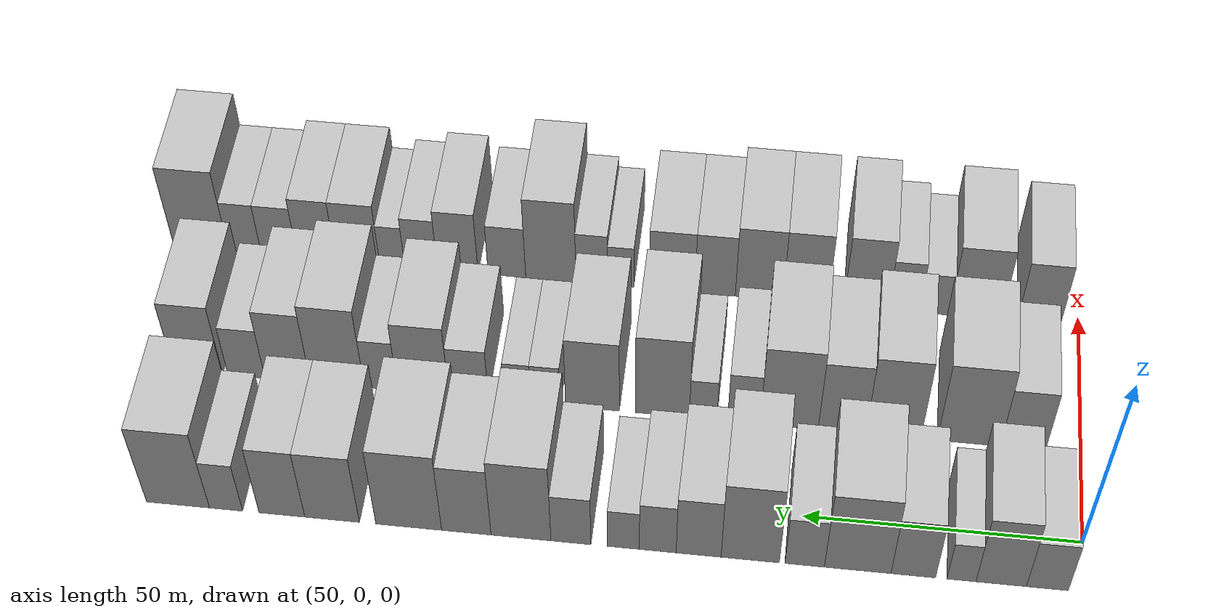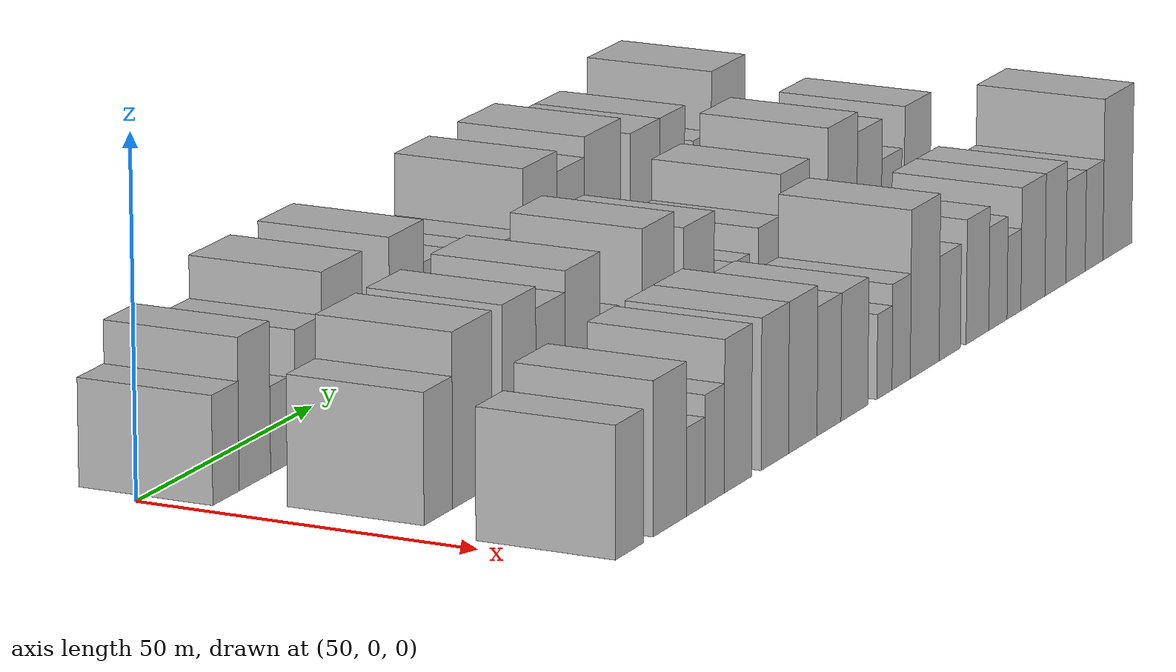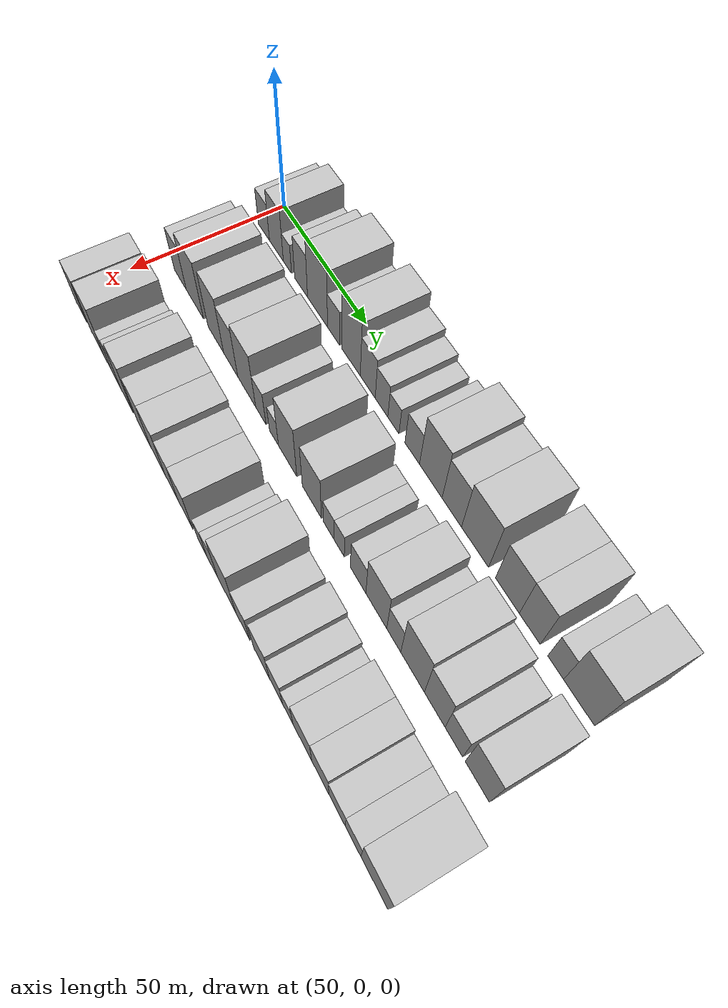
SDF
<sdf version="1.6">
 <world name="default">
  <model name="building_40">
   <static>1</static>
   <pose>50.0000 6.2769 0 0.000000 0.000000 0.000000</pose>
   <link name="link">
    <pose>0 0 7.50 0 0 0</pose>
    <collision name="collision"><geometry><box><size>20.0000 7.3298 15.0000</size></box></geometry></collision>
    <visual name="visual">
     <cast_shadows>0</cast_shadows>
     <geometry><box><size>20.0000 7.3298 15.0000</size></box></geometry>
     <material>
      <script>
       <uri>model://HANNAS_wall/materials/scripts</uri>
       <uri>model://HANNAS_wall/materials/textures</uri>
       <name>vrc/HANNAS_wall</name>
      </script>
     </material>
    </visual>
   </link>
  </model>
  <model name="building_41">
   <static>1</static>
   <pose>50.0000 14.3793 0 0.000000 0.000000 0.000000</pose>
   <link name="link">
    <pose>0 0 10.50 0 0 0</pose>
    <collision name="collision"><geometry><box><size>20.0000 8.8749 21.0000</size></box></geometry></collision>
    <visual name="visual">
     <cast_shadows>0</cast_shadows>
     <geometry><box><size>20.0000 8.8749 21.0000</size></box></geometry>
     <material>
      <script>
       <uri>model://HANNAS_wall/materials/scripts</uri>
       <uri>model://HANNAS_wall/materials/textures</uri>
       <name>vrc/HANNAS_wall</name>
      </script>
     </material>
    </visual>
   </link>
  </model>
  <model name="building_42">
   <static>1</static>
   <pose>50.0000 21.3698 0 0.000000 0.000000 0.000000</pose>
   <link name="link">
    <pose>0 0 6.00 0 0 0</pose>
    <collision name="collision"><geometry><box><size>20.0000 5.1060 12.0000</size></box></geometry></collision>
    <visual name="visual">
     <cast_shadows>0</cast_shadows>
     <geometry><box><size>20.0000 5.1060 12.0000</size></box></geometry>
     <material>
      <script>
       <uri>model://HANNAS_wall/materials/scripts</uri>
       <uri>model://HANNAS_wall/materials/textures</uri>
       <name>vrc/HANNAS_wall</name>
      </script>
     </material>
    </visual>
   </link>
  </model>
  <model name="building_43">
   <static>1</static>
   <pose>50.0000 29.8558 0 0.000000 0.000000 0.000000</pose>
   <link name="link">
    <pose>0 0 9.00 0 0 0</pose>
    <collision name="collision"><geometry><box><size>20.0000 7.8661 18.0000</size></box></geometry></collision>
    <visual name="visual">
     <cast_shadows>0</cast_shadows>
     <geometry><box><size>20.0000 7.8661 18.0000</size></box></geometry>
     <material>
      <script>
       <uri>model://HANNAS_wall/materials/scripts</uri>
       <uri>model://HANNAS_wall/materials/textures</uri>
       <name>vrc/HANNAS_wall</name>
      </script>
     </material>
    </visual>
   </link>
  </model>
  <model name="building_44">
   <static>1</static>
   <pose>50.0000 39.6937 0 0.000000 0.000000 0.000000</pose>
   <link name="link">
    <pose>0 0 12.00 0 0 0</pose>
    <collision name="collision"><geometry><box><size>20.0000 11.8096 24.0000</size></box></geometry></collision>
    <visual name="visual">
     <cast_shadows>0</cast_shadows>
     <geometry><box><size>20.0000 11.8096 24.0000</size></box></geometry>
     <material>
      <script>
       <uri>model://HANNAS_wall/materials/scripts</uri>
       <uri>model://HANNAS_wall/materials/textures</uri>
       <name>vrc/HANNAS_wall</name>
      </script>
     </material>
    </visual>
   </link>
  </model>
  <model name="building_45">
   <static>1</static>
   <pose>50.0000 49.0959 0 0.000000 0.000000 0.000000</pose>
   <link name="link">
    <pose>0 0 7.50 0 0 0</pose>
    <collision name="collision"><geometry><box><size>20.0000 6.9949 15.0000</size></box></geometry></collision>
    <visual name="visual">
     <cast_shadows>0</cast_shadows>
     <geometry><box><size>20.0000 6.9949 15.0000</size></box></geometry>
     <material>
      <script>
       <uri>model://HANNAS_wall/materials/scripts</uri>
       <uri>model://HANNAS_wall/materials/textures</uri>
       <name>vrc/HANNAS_wall</name>
      </script>
     </material>
    </visual>
   </link>
  </model>
  <model name="building_46">
   <static>1</static>
   <pose>50.0000 58.7831 0 0.000000 0.000000 0.000000</pose>
   <link name="link">
    <pose>0 0 12.00 0 0 0</pose>
    <collision name="collision"><geometry><box><size>20.0000 10.3796 24.0000</size></box></geometry></collision>
    <visual name="visual">
     <cast_shadows>0</cast_shadows>
     <geometry><box><size>20.0000 10.3796 24.0000</size></box></geometry>
     <material>
      <script>
       <uri>model://HANNAS_wall/materials/scripts</uri>
       <uri>model://HANNAS_wall/materials/textures</uri>
       <name>vrc/HANNAS_wall</name>
      </script>
     </material>
    </visual>
   </link>
  </model>
  <model name="building_47">
   <static>1</static>
   <pose>50.0000 67.9935 0 0.000000 0.000000 0.000000</pose>
   <link name="link">
    <pose>0 0 9.00 0 0 0</pose>
    <collision name="collision"><geometry><box><size>20.0000 8.0411 18.0000</size></box></geometry></collision>
    <visual name="visual">
     <cast_shadows>0</cast_shadows>
     <geometry><box><size>20.0000 8.0411 18.0000</size></box></geometry>
     <material>
      <script>
       <uri>model://HANNAS_wall/materials/scripts</uri>
       <uri>model://HANNAS_wall/materials/textures</uri>
       <name>vrc/HANNAS_wall</name>
      </script>
     </material>
    </visual>
   </link>
  </model>
  <model name="building_48">
   <static>1</static>
   <pose>50.0000 75.3206 0 0.000000 0.000000 0.000000</pose>
   <link name="link">
    <pose>0 0 7.50 0 0 0</pose>
    <collision name="collision"><geometry><box><size>20.0000 6.6130 15.0000</size></box></geometry></collision>
    <visual name="visual">
     <cast_shadows>0</cast_shadows>
     <geometry><box><size>20.0000 6.6130 15.0000</size></box></geometry>
     <material>
      <script>
       <uri>model://HANNAS_wall/materials/scripts</uri>
       <uri>model://HANNAS_wall/materials/textures</uri>
       <name>vrc/HANNAS_wall</name>
      </script>
     </material>
    </visual>
   </link>
  </model>
  <model name="building_49">
   <static>1</static>
   <pose>50.0000 81.4711 0 0.000000 0.000000 0.000000</pose>
   <link name="link">
    <pose>0 0 6.00 0 0 0</pose>
    <collision name="collision"><geometry><box><size>20.0000 5.6880 12.0000</size></box></geometry></collision>
    <visual name="visual">
     <cast_shadows>0</cast_shadows>
     <geometry><box><size>20.0000 5.6880 12.0000</size></box></geometry>
     <material>
      <script>
       <uri>model://HANNAS_wall/materials/scripts</uri>
       <uri>model://HANNAS_wall/materials/textures</uri>
       <name>vrc/HANNAS_wall</name>
      </script>
     </material>
    </visual>
   </link>
  </model>
  <model name="building_50">
   <static>1</static>
   <pose>50.0000 90.9111 0 0.000000 0.000000 0.000000</pose>
   <link name="link">
    <pose>0 0 7.50 0 0 0</pose>
    <collision name="collision"><geometry><box><size>20.0000 7.1922 15.0000</size></box></geometry></collision>
    <visual name="visual">
     <cast_shadows>0</cast_shadows>
     <geometry><box><size>20.0000 7.1922 15.0000</size></box></geometry>
     <material>
      <script>
       <uri>model://HANNAS_wall/materials/scripts</uri>
       <uri>model://HANNAS_wall/materials/textures</uri>
       <name>vrc/HANNAS_wall</name>
      </script>
     </material>
    </visual>
   </link>
  </model>
  <model name="building_51">
   <static>1</static>
   <pose>50.0000 99.9190 0 0.000000 0.000000 0.000000</pose>
   <link name="link">
    <pose>0 0 12.00 0 0 0</pose>
    <collision name="collision"><geometry><box><size>20.0000 10.8236 24.0000</size></box></geometry></collision>
    <visual name="visual">
     <cast_shadows>0</cast_shadows>
     <geometry><box><size>20.0000 10.8236 24.0000</size></box></geometry>
     <material>
      <script>
       <uri>model://HANNAS_wall/materials/scripts</uri>
       <uri>model://HANNAS_wall/materials/textures</uri>
       <name>vrc/HANNAS_wall</name>
      </script>
     </material>
    </visual>
   </link>
  </model>
  <model name="building_52">
   <static>1</static>
   <pose>50.0000 109.8083 0 0.000000 0.000000 0.000000</pose>
   <link name="link">
    <pose>0 0 10.50 0 0 0</pose>
    <collision name="collision"><geometry><box><size>20.0000 8.9550 21.0000</size></box></geometry></collision>
    <visual name="visual">
     <cast_shadows>0</cast_shadows>
     <geometry><box><size>20.0000 8.9550 21.0000</size></box></geometry>
     <material>
      <script>
       <uri>model://HANNAS_wall/materials/scripts</uri>
       <uri>model://HANNAS_wall/materials/textures</uri>
       <name>vrc/HANNAS_wall</name>
      </script>
     </material>
    </visual>
   </link>
  </model>
  <model name="building_53">
   <static>1</static>
   <pose>50.0000 120.2700 0 0.000000 0.000000 0.000000</pose>
   <link name="link">
    <pose>0 0 12.00 0 0 0</pose>
    <collision name="collision"><geometry><box><size>20.0000 11.9684 24.0000</size></box></geometry></collision>
    <visual name="visual">
     <cast_shadows>0</cast_shadows>
     <geometry><box><size>20.0000 11.9684 24.0000</size></box></geometry>
     <material>
      <script>
       <uri>model://HANNAS_wall/materials/scripts</uri>
       <uri>model://HANNAS_wall/materials/textures</uri>
       <name>vrc/HANNAS_wall</name>
      </script>
     </material>
    </visual>
   </link>
  </model>
  <model name="building_54">
   <static>1</static>
   <pose>50.0000 134.2469 0 0.000000 0.000000 0.000000</pose>
   <link name="link">
    <pose>0 0 10.50 0 0 0</pose>
    <collision name="collision"><geometry><box><size>20.0000 9.9855 21.0000</size></box></geometry></collision>
    <visual name="visual">
     <cast_shadows>0</cast_shadows>
     <geometry><box><size>20.0000 9.9855 21.0000</size></box></geometry>
     <material>
      <script>
       <uri>model://HANNAS_wall/materials/scripts</uri>
       <uri>model://HANNAS_wall/materials/textures</uri>
       <name>vrc/HANNAS_wall</name>
      </script>
     </material>
    </visual>
   </link>
  </model>
  <model name="building_55">
   <static>1</static>
   <pose>50.0000 143.4417 0 0.000000 0.000000 0.000000</pose>
   <link name="link">
    <pose>0 0 10.50 0 0 0</pose>
    <collision name="collision"><geometry><box><size>20.0000 8.4040 21.0000</size></box></geometry></collision>
    <visual name="visual">
     <cast_shadows>0</cast_shadows>
     <geometry><box><size>20.0000 8.4040 21.0000</size></box></geometry>
     <material>
      <script>
       <uri>model://HANNAS_wall/materials/scripts</uri>
       <uri>model://HANNAS_wall/materials/textures</uri>
       <name>vrc/HANNAS_wall</name>
      </script>
     </material>
    </visual>
   </link>
  </model>
  <model name="building_56">
   <static>1</static>
   <pose>50.0000 153.7033 0 0.000000 0.000000 0.000000</pose>
   <link name="link">
    <pose>0 0 7.50 0 0 0</pose>
    <collision name="collision"><geometry><box><size>20.0000 6.1192 15.0000</size></box></geometry></collision>
    <visual name="visual">
     <cast_shadows>0</cast_shadows>
     <geometry><box><size>20.0000 6.1192 15.0000</size></box></geometry>
     <material>
      <script>
       <uri>model://HANNAS_wall/materials/scripts</uri>
       <uri>model://HANNAS_wall/materials/textures</uri>
       <name>vrc/HANNAS_wall</name>
      </script>
     </material>
    </visual>
   </link>
  </model>
  <model name="building_57">
   <static>1</static>
   <pose>50.0000 162.5626 0 0.000000 0.000000 0.000000</pose>
   <link name="link">
    <pose>0 0 12.00 0 0 0</pose>
    <collision name="collision"><geometry><box><size>20.0000 11.5995 24.0000</size></box></geometry></collision>
    <visual name="visual">
     <cast_shadows>0</cast_shadows>
     <geometry><box><size>20.0000 11.5995 24.0000</size></box></geometry>
     <material>
      <script>
       <uri>model://HANNAS_wall/materials/scripts</uri>
       <uri>model://HANNAS_wall/materials/textures</uri>
       <name>vrc/HANNAS_wall</name>
      </script>
     </material>
    </visual>
   </link>
  </model>
  <model name="building_114">
   <static>1</static>
   <pose>79.0000 10.5758 0 0.000000 0.000000 0.000000</pose>
   <link name="link">
    <pose>0 0 9.00 0 0 0</pose>
    <collision name="collision"><geometry><box><size>20.0000 8.2987 18.0000</size></box></geometry></collision>
    <visual name="visual">
     <cast_shadows>0</cast_shadows>
     <geometry><box><size>20.0000 8.2987 18.0000</size></box></geometry>
     <material>
      <script>
       <uri>model://HANNAS_wall/materials/scripts</uri>
       <uri>model://HANNAS_wall/materials/textures</uri>
       <name>vrc/HANNAS_wall</name>
      </script>
     </material>
    </visual>
   </link>
  </model>
  <model name="building_115">
   <static>1</static>
   <pose>79.0000 20.5385 0 0.000000 0.000000 0.000000</pose>
   <link name="link">
    <pose>0 0 12.00 0 0 0</pose>
    <collision name="collision"><geometry><box><size>20.0000 11.6267 24.0000</size></box></geometry></collision>
    <visual name="visual">
     <cast_shadows>0</cast_shadows>
     <geometry><box><size>20.0000 11.6267 24.0000</size></box></geometry>
     <material>
      <script>
       <uri>model://HANNAS_wall/materials/scripts</uri>
       <uri>model://HANNAS_wall/materials/textures</uri>
       <name>vrc/HANNAS_wall</name>
      </script>
     </material>
    </visual>
   </link>
  </model>
  <model name="building_116">
   <static>1</static>
   <pose>79.0000 34.4201 0 0.000000 0.000000 0.000000</pose>
   <link name="link">
    <pose>0 0 12.00 0 0 0</pose>
    <collision name="collision"><geometry><box><size>20.0000 10.1365 24.0000</size></box></geometry></collision>
    <visual name="visual">
     <cast_shadows>0</cast_shadows>
     <geometry><box><size>20.0000 10.1365 24.0000</size></box></geometry>
     <material>
      <script>
       <uri>model://HANNAS_wall/materials/scripts</uri>
       <uri>model://HANNAS_wall/materials/textures</uri>
       <name>vrc/HANNAS_wall</name>
      </script>
     </material>
    </visual>
   </link>
  </model>
  <model name="building_117">
   <static>1</static>
   <pose>79.0000 43.9168 0 0.000000 0.000000 0.000000</pose>
   <link name="link">
    <pose>0 0 10.50 0 0 0</pose>
    <collision name="collision"><geometry><box><size>20.0000 8.8569 21.0000</size></box></geometry></collision>
    <visual name="visual">
     <cast_shadows>0</cast_shadows>
     <geometry><box><size>20.0000 8.8569 21.0000</size></box></geometry>
     <material>
      <script>
       <uri>model://HANNAS_wall/materials/scripts</uri>
       <uri>model://HANNAS_wall/materials/textures</uri>
       <name>vrc/HANNAS_wall</name>
      </script>
     </material>
    </visual>
   </link>
  </model>
  <model name="building_118">
   <static>1</static>
   <pose>79.0000 53.7370 0 0.000000 0.000000 0.000000</pose>
   <link name="link">
    <pose>0 0 12.00 0 0 0</pose>
    <collision name="collision"><geometry><box><size>20.0000 10.7835 24.0000</size></box></geometry></collision>
    <visual name="visual">
     <cast_shadows>0</cast_shadows>
     <geometry><box><size>20.0000 10.7835 24.0000</size></box></geometry>
     <material>
      <script>
       <uri>model://HANNAS_wall/materials/scripts</uri>
       <uri>model://HANNAS_wall/materials/textures</uri>
       <name>vrc/HANNAS_wall</name>
      </script>
     </material>
    </visual>
   </link>
  </model>
  <model name="building_119">
   <static>1</static>
   <pose>79.0000 62.1556 0 0.000000 0.000000 0.000000</pose>
   <link name="link">
    <pose>0 0 7.50 0 0 0</pose>
    <collision name="collision"><geometry><box><size>20.0000 6.0535 15.0000</size></box></geometry></collision>
    <visual name="visual">
     <cast_shadows>0</cast_shadows>
     <geometry><box><size>20.0000 6.0535 15.0000</size></box></geometry>
     <material>
      <script>
       <uri>model://HANNAS_wall/materials/scripts</uri>
       <uri>model://HANNAS_wall/materials/textures</uri>
       <name>vrc/HANNAS_wall</name>
      </script>
     </material>
    </visual>
   </link>
  </model>
  <model name="building_120">
   <static>1</static>
   <pose>79.0000 69.7512 0 0.000000 0.000000 0.000000</pose>
   <link name="link">
    <pose>0 0 6.00 0 0 0</pose>
    <collision name="collision"><geometry><box><size>20.0000 5.1376 12.0000</size></box></geometry></collision>
    <visual name="visual">
     <cast_shadows>0</cast_shadows>
     <geometry><box><size>20.0000 5.1376 12.0000</size></box></geometry>
     <material>
      <script>
       <uri>model://HANNAS_wall/materials/scripts</uri>
       <uri>model://HANNAS_wall/materials/textures</uri>
       <name>vrc/HANNAS_wall</name>
      </script>
     </material>
    </visual>
   </link>
  </model>
  <model name="building_121">
   <static>1</static>
   <pose>79.0000 77.3789 0 0.000000 0.000000 0.000000</pose>
   <link name="link">
    <pose>0 0 12.00 0 0 0</pose>
    <collision name="collision"><geometry><box><size>20.0000 10.1180 24.0000</size></box></geometry></collision>
    <visual name="visual">
     <cast_shadows>0</cast_shadows>
     <geometry><box><size>20.0000 10.1180 24.0000</size></box></geometry>
     <material>
      <script>
       <uri>model://HANNAS_wall/materials/scripts</uri>
       <uri>model://HANNAS_wall/materials/textures</uri>
       <name>vrc/HANNAS_wall</name>
      </script>
     </material>
    </visual>
   </link>
  </model>
  <model name="building_122">
   <static>1</static>
   <pose>79.0000 90.4845 0 0.000000 0.000000 0.000000</pose>
   <link name="link">
    <pose>0 0 10.50 0 0 0</pose>
    <collision name="collision"><geometry><box><size>20.0000 10.0931 21.0000</size></box></geometry></collision>
    <visual name="visual">
     <cast_shadows>0</cast_shadows>
     <geometry><box><size>20.0000 10.0931 21.0000</size></box></geometry>
     <material>
      <script>
       <uri>model://HANNAS_wall/materials/scripts</uri>
       <uri>model://HANNAS_wall/materials/textures</uri>
       <name>vrc/HANNAS_wall</name>
      </script>
     </material>
    </visual>
   </link>
  </model>
  <model name="building_123">
   <static>1</static>
   <pose>79.0000 99.3247 0 0.000000 0.000000 0.000000</pose>
   <link name="link">
    <pose>0 0 6.00 0 0 0</pose>
    <collision name="collision"><geometry><box><size>20.0000 5.5872 12.0000</size></box></geometry></collision>
    <visual name="visual">
     <cast_shadows>0</cast_shadows>
     <geometry><box><size>20.0000 5.5872 12.0000</size></box></geometry>
     <material>
      <script>
       <uri>model://HANNAS_wall/materials/scripts</uri>
       <uri>model://HANNAS_wall/materials/textures</uri>
       <name>vrc/HANNAS_wall</name>
      </script>
     </material>
    </visual>
   </link>
  </model>
  <model name="building_124">
   <static>1</static>
   <pose>79.0000 104.6119 0 0.000000 0.000000 0.000000</pose>
   <link name="link">
    <pose>0 0 6.00 0 0 0</pose>
    <collision name="collision"><geometry><box><size>20.0000 4.9874 12.0000</size></box></geometry></collision>
    <visual name="visual">
     <cast_shadows>0</cast_shadows>
     <geometry><box><size>20.0000 4.9874 12.0000</size></box></geometry>
     <material>
      <script>
       <uri>model://HANNAS_wall/materials/scripts</uri>
       <uri>model://HANNAS_wall/materials/textures</uri>
       <name>vrc/HANNAS_wall</name>
      </script>
     </material>
    </visual>
   </link>
  </model>
  <model name="building_125">
   <static>1</static>
   <pose>79.0000 113.8420 0 0.000000 0.000000 0.000000</pose>
   <link name="link">
    <pose>0 0 7.50 0 0 0</pose>
    <collision name="collision"><geometry><box><size>20.0000 7.4728 15.0000</size></box></geometry></collision>
    <visual name="visual">
     <cast_shadows>0</cast_shadows>
     <geometry><box><size>20.0000 7.4728 15.0000</size></box></geometry>
     <material>
      <script>
       <uri>model://HANNAS_wall/materials/scripts</uri>
       <uri>model://HANNAS_wall/materials/textures</uri>
       <name>vrc/HANNAS_wall</name>
      </script>
     </material>
    </visual>
   </link>
  </model>
  <model name="building_126">
   <static>1</static>
   <pose>79.0000 122.4557 0 0.000000 0.000000 0.000000</pose>
   <link name="link">
    <pose>0 0 10.50 0 0 0</pose>
    <collision name="collision"><geometry><box><size>20.0000 9.7545 21.0000</size></box></geometry></collision>
    <visual name="visual">
     <cast_shadows>0</cast_shadows>
     <geometry><box><size>20.0000 9.7545 21.0000</size></box></geometry>
     <material>
      <script>
       <uri>model://HANNAS_wall/materials/scripts</uri>
       <uri>model://HANNAS_wall/materials/textures</uri>
       <name>vrc/HANNAS_wall</name>
      </script>
     </material>
    </visual>
   </link>
  </model>
  <model name="building_127">
   <static>1</static>
   <pose>79.0000 130.4893 0 0.000000 0.000000 0.000000</pose>
   <link name="link">
    <pose>0 0 7.50 0 0 0</pose>
    <collision name="collision"><geometry><box><size>20.0000 6.3129 15.0000</size></box></geometry></collision>
    <visual name="visual">
     <cast_shadows>0</cast_shadows>
     <geometry><box><size>20.0000 6.3129 15.0000</size></box></geometry>
     <material>
      <script>
       <uri>model://HANNAS_wall/materials/scripts</uri>
       <uri>model://HANNAS_wall/materials/textures</uri>
       <name>vrc/HANNAS_wall</name>
      </script>
     </material>
    </visual>
   </link>
  </model>
  <model name="building_128">
   <static>1</static>
   <pose>79.0000 138.8078 0 0.000000 0.000000 0.000000</pose>
   <link name="link">
    <pose>0 0 12.00 0 0 0</pose>
    <collision name="collision"><geometry><box><size>20.0000 10.3240 24.0000</size></box></geometry></collision>
    <visual name="visual">
     <cast_shadows>0</cast_shadows>
     <geometry><box><size>20.0000 10.3240 24.0000</size></box></geometry>
     <material>
      <script>
       <uri>model://HANNAS_wall/materials/scripts</uri>
       <uri>model://HANNAS_wall/materials/textures</uri>
       <name>vrc/HANNAS_wall</name>
      </script>
     </material>
    </visual>
   </link>
  </model>
  <model name="building_129">
   <static>1</static>
   <pose>79.0000 148.3099 0 0.000000 0.000000 0.000000</pose>
   <link name="link">
    <pose>0 0 10.50 0 0 0</pose>
    <collision name="collision"><geometry><box><size>20.0000 8.6802 21.0000</size></box></geometry></collision>
    <visual name="visual">
     <cast_shadows>0</cast_shadows>
     <geometry><box><size>20.0000 8.6802 21.0000</size></box></geometry>
     <material>
      <script>
       <uri>model://HANNAS_wall/materials/scripts</uri>
       <uri>model://HANNAS_wall/materials/textures</uri>
       <name>vrc/HANNAS_wall</name>
      </script>
     </material>
    </visual>
   </link>
  </model>
  <model name="building_130">
   <static>1</static>
   <pose>79.0000 156.2112 0 0.000000 0.000000 0.000000</pose>
   <link name="link">
    <pose>0 0 7.50 0 0 0</pose>
    <collision name="collision"><geometry><box><size>20.0000 7.1224 15.0000</size></box></geometry></collision>
    <visual name="visual">
     <cast_shadows>0</cast_shadows>
     <geometry><box><size>20.0000 7.1224 15.0000</size></box></geometry>
     <material>
      <script>
       <uri>model://HANNAS_wall/materials/scripts</uri>
       <uri>model://HANNAS_wall/materials/textures</uri>
       <name>vrc/HANNAS_wall</name>
      </script>
     </material>
    </visual>
   </link>
  </model>
  <model name="building_131">
   <static>1</static>
   <pose>79.0000 165.4936 0 0.000000 0.000000 0.000000</pose>
   <link name="link">
    <pose>0 0 10.50 0 0 0</pose>
    <collision name="collision"><geometry><box><size>20.0000 9.4423 21.0000</size></box></geometry></collision>
    <visual name="visual">
     <cast_shadows>0</cast_shadows>
     <geometry><box><size>20.0000 9.4423 21.0000</size></box></geometry>
     <material>
      <script>
       <uri>model://HANNAS_wall/materials/scripts</uri>
       <uri>model://HANNAS_wall/materials/textures</uri>
       <name>vrc/HANNAS_wall</name>
      </script>
     </material>
    </visual>
   </link>
  </model>
  <model name="building_186">
   <static>1</static>
   <pose>108.0000 7.5451 0 0.000000 0.000000 0.000000</pose>
   <link name="link">
    <pose>0 0 9.00 0 0 0</pose>
    <collision name="collision"><geometry><box><size>20.0000 8.2315 18.0000</size></box></geometry></collision>
    <visual name="visual">
     <cast_shadows>0</cast_shadows>
     <geometry><box><size>20.0000 8.2315 18.0000</size></box></geometry>
     <material>
      <script>
       <uri>model://HANNAS_wall/materials/scripts</uri>
       <uri>model://HANNAS_wall/materials/textures</uri>
       <name>vrc/HANNAS_wall</name>
      </script>
     </material>
    </visual>
   </link>
  </model>
  <model name="building_187">
   <static>1</static>
   <pose>108.0000 19.6900 0 0.000000 0.000000 0.000000</pose>
   <link name="link">
    <pose>0 0 10.50 0 0 0</pose>
    <collision name="collision"><geometry><box><size>20.0000 10.0584 21.0000</size></box></geometry></collision>
    <visual name="visual">
     <cast_shadows>0</cast_shadows>
     <geometry><box><size>20.0000 10.0584 21.0000</size></box></geometry>
     <material>
      <script>
       <uri>model://HANNAS_wall/materials/scripts</uri>
       <uri>model://HANNAS_wall/materials/textures</uri>
       <name>vrc/HANNAS_wall</name>
      </script>
     </material>
    </visual>
   </link>
  </model>
  <model name="building_188">
   <static>1</static>
   <pose>108.0000 27.5665 0 0.000000 0.000000 0.000000</pose>
   <link name="link">
    <pose>0 0 6.00 0 0 0</pose>
    <collision name="collision"><geometry><box><size>20.0000 5.6945 12.0000</size></box></geometry></collision>
    <visual name="visual">
     <cast_shadows>0</cast_shadows>
     <geometry><box><size>20.0000 5.6945 12.0000</size></box></geometry>
     <material>
      <script>
       <uri>model://HANNAS_wall/materials/scripts</uri>
       <uri>model://HANNAS_wall/materials/textures</uri>
       <name>vrc/HANNAS_wall</name>
      </script>
     </material>
    </visual>
   </link>
  </model>
  <model name="building_189">
   <static>1</static>
   <pose>108.0000 33.4491 0 0.000000 0.000000 0.000000</pose>
   <link name="link">
    <pose>0 0 7.50 0 0 0</pose>
    <collision name="collision"><geometry><box><size>20.0000 6.0708 15.0000</size></box></geometry></collision>
    <visual name="visual">
     <cast_shadows>0</cast_shadows>
     <geometry><box><size>20.0000 6.0708 15.0000</size></box></geometry>
     <material>
      <script>
       <uri>model://HANNAS_wall/materials/scripts</uri>
       <uri>model://HANNAS_wall/materials/textures</uri>
       <name>vrc/HANNAS_wall</name>
      </script>
     </material>
    </visual>
   </link>
  </model>
  <model name="building_190">
   <static>1</static>
   <pose>108.0000 40.7851 0 0.000000 0.000000 0.000000</pose>
   <link name="link">
    <pose>0 0 10.50 0 0 0</pose>
    <collision name="collision"><geometry><box><size>20.0000 8.6012 21.0000</size></box></geometry></collision>
    <visual name="visual">
     <cast_shadows>0</cast_shadows>
     <geometry><box><size>20.0000 8.6012 21.0000</size></box></geometry>
     <material>
      <script>
       <uri>model://HANNAS_wall/materials/scripts</uri>
       <uri>model://HANNAS_wall/materials/textures</uri>
       <name>vrc/HANNAS_wall</name>
      </script>
     </material>
    </visual>
   </link>
  </model>
  <model name="building_191">
   <static>1</static>
   <pose>108.0000 52.4677 0 0.000000 0.000000 0.000000</pose>
   <link name="link">
    <pose>0 0 10.50 0 0 0</pose>
    <collision name="collision"><geometry><box><size>20.0000 8.7640 21.0000</size></box></geometry></collision>
    <visual name="visual">
     <cast_shadows>0</cast_shadows>
     <geometry><box><size>20.0000 8.7640 21.0000</size></box></geometry>
     <material>
      <script>
       <uri>model://HANNAS_wall/materials/scripts</uri>
       <uri>model://HANNAS_wall/materials/textures</uri>
       <name>vrc/HANNAS_wall</name>
      </script>
     </material>
    </visual>
   </link>
  </model>
  <model name="building_192">
   <static>1</static>
   <pose>108.0000 61.4539 0 0.000000 0.000000 0.000000</pose>
   <link name="link">
    <pose>0 0 10.50 0 0 0</pose>
    <collision name="collision"><geometry><box><size>20.0000 9.2084 21.0000</size></box></geometry></collision>
    <visual name="visual">
     <cast_shadows>0</cast_shadows>
     <geometry><box><size>20.0000 9.2084 21.0000</size></box></geometry>
     <material>
      <script>
       <uri>model://HANNAS_wall/materials/scripts</uri>
       <uri>model://HANNAS_wall/materials/textures</uri>
       <name>vrc/HANNAS_wall</name>
      </script>
     </material>
    </visual>
   </link>
  </model>
  <model name="building_193">
   <static>1</static>
   <pose>108.0000 69.9841 0 0.000000 0.000000 0.000000</pose>
   <link name="link">
    <pose>0 0 9.00 0 0 0</pose>
    <collision name="collision"><geometry><box><size>20.0000 7.8519 18.0000</size></box></geometry></collision>
    <visual name="visual">
     <cast_shadows>0</cast_shadows>
     <geometry><box><size>20.0000 7.8519 18.0000</size></box></geometry>
     <material>
      <script>
       <uri>model://HANNAS_wall/materials/scripts</uri>
       <uri>model://HANNAS_wall/materials/textures</uri>
       <name>vrc/HANNAS_wall</name>
      </script>
     </material>
    </visual>
   </link>
  </model>
  <model name="building_194">
   <static>1</static>
   <pose>108.0000 78.3804 0 0.000000 0.000000 0.000000</pose>
   <link name="link">
    <pose>0 0 9.00 0 0 0</pose>
    <collision name="collision"><geometry><box><size>20.0000 8.9408 18.0000</size></box></geometry></collision>
    <visual name="visual">
     <cast_shadows>0</cast_shadows>
     <geometry><box><size>20.0000 8.9408 18.0000</size></box></geometry>
     <material>
      <script>
       <uri>model://HANNAS_wall/materials/scripts</uri>
       <uri>model://HANNAS_wall/materials/textures</uri>
       <name>vrc/HANNAS_wall</name>
      </script>
     </material>
    </visual>
   </link>
  </model>
  <model name="building_195">
   <static>1</static>
   <pose>108.0000 88.3938 0 0.000000 0.000000 0.000000</pose>
   <link name="link">
    <pose>0 0 6.00 0 0 0</pose>
    <collision name="collision"><geometry><box><size>20.0000 5.0858 12.0000</size></box></geometry></collision>
    <visual name="visual">
     <cast_shadows>0</cast_shadows>
     <geometry><box><size>20.0000 5.0858 12.0000</size></box></geometry>
     <material>
      <script>
       <uri>model://HANNAS_wall/materials/scripts</uri>
       <uri>model://HANNAS_wall/materials/textures</uri>
       <name>vrc/HANNAS_wall</name>
      </script>
     </material>
    </visual>
   </link>
  </model>
  <model name="building_196">
   <static>1</static>
   <pose>108.0000 94.0449 0 0.000000 0.000000 0.000000</pose>
   <link name="link">
    <pose>0 0 7.50 0 0 0</pose>
    <collision name="collision"><geometry><box><size>20.0000 6.2165 15.0000</size></box></geometry></collision>
    <visual name="visual">
     <cast_shadows>0</cast_shadows>
     <geometry><box><size>20.0000 6.2165 15.0000</size></box></geometry>
     <material>
      <script>
       <uri>model://HANNAS_wall/materials/scripts</uri>
       <uri>model://HANNAS_wall/materials/textures</uri>
       <name>vrc/HANNAS_wall</name>
      </script>
     </material>
    </visual>
   </link>
  </model>
  <model name="building_197">
   <static>1</static>
   <pose>108.0000 102.0988 0 0.000000 0.000000 0.000000</pose>
   <link name="link">
    <pose>0 0 12.00 0 0 0</pose>
    <collision name="collision"><geometry><box><size>20.0000 9.8914 24.0000</size></box></geometry></collision>
    <visual name="visual">
     <cast_shadows>0</cast_shadows>
     <geometry><box><size>20.0000 9.8914 24.0000</size></box></geometry>
     <material>
      <script>
       <uri>model://HANNAS_wall/materials/scripts</uri>
       <uri>model://HANNAS_wall/materials/textures</uri>
       <name>vrc/HANNAS_wall</name>
      </script>
     </material>
    </visual>
   </link>
  </model>
  <model name="building_198">
   <static>1</static>
   <pose>108.0000 110.7418 0 0.000000 0.000000 0.000000</pose>
   <link name="link">
    <pose>0 0 7.50 0 0 0</pose>
    <collision name="collision"><geometry><box><size>20.0000 7.3944 15.0000</size></box></geometry></collision>
    <visual name="visual">
     <cast_shadows>0</cast_shadows>
     <geometry><box><size>20.0000 7.3944 15.0000</size></box></geometry>
     <material>
      <script>
       <uri>model://HANNAS_wall/materials/scripts</uri>
       <uri>model://HANNAS_wall/materials/textures</uri>
       <name>vrc/HANNAS_wall</name>
      </script>
     </material>
    </visual>
   </link>
  </model>
  <model name="building_199">
   <static>1</static>
   <pose>108.0000 120.4477 0 0.000000 0.000000 0.000000</pose>
   <link name="link">
    <pose>0 0 9.00 0 0 0</pose>
    <collision name="collision"><geometry><box><size>20.0000 8.0175 18.0000</size></box></geometry></collision>
    <visual name="visual">
     <cast_shadows>0</cast_shadows>
     <geometry><box><size>20.0000 8.0175 18.0000</size></box></geometry>
     <material>
      <script>
       <uri>model://HANNAS_wall/materials/scripts</uri>
       <uri>model://HANNAS_wall/materials/textures</uri>
       <name>vrc/HANNAS_wall</name>
      </script>
     </material>
    </visual>
   </link>
  </model>
  <model name="building_200">
   <static>1</static>
   <pose>108.0000 127.7028 0 0.000000 0.000000 0.000000</pose>
   <link name="link">
    <pose>0 0 7.50 0 0 0</pose>
    <collision name="collision"><geometry><box><size>20.0000 6.4926 15.0000</size></box></geometry></collision>
    <visual name="visual">
     <cast_shadows>0</cast_shadows>
     <geometry><box><size>20.0000 6.4926 15.0000</size></box></geometry>
     <material>
      <script>
       <uri>model://HANNAS_wall/materials/scripts</uri>
       <uri>model://HANNAS_wall/materials/textures</uri>
       <name>vrc/HANNAS_wall</name>
      </script>
     </material>
    </visual>
   </link>
  </model>
  <model name="building_201">
   <static>1</static>
   <pose>108.0000 133.4294 0 0.000000 0.000000 0.000000</pose>
   <link name="link">
    <pose>0 0 6.00 0 0 0</pose>
    <collision name="collision"><geometry><box><size>20.0000 4.9606 12.0000</size></box></geometry></collision>
    <visual name="visual">
     <cast_shadows>0</cast_shadows>
     <geometry><box><size>20.0000 4.9606 12.0000</size></box></geometry>
     <material>
      <script>
       <uri>model://HANNAS_wall/materials/scripts</uri>
       <uri>model://HANNAS_wall/materials/textures</uri>
       <name>vrc/HANNAS_wall</name>
      </script>
     </material>
    </visual>
   </link>
  </model>
  <model name="building_202">
   <static>1</static>
   <pose>108.0000 140.2703 0 0.000000 0.000000 0.000000</pose>
   <link name="link">
    <pose>0 0 9.00 0 0 0</pose>
    <collision name="collision"><geometry><box><size>20.0000 8.7211 18.0000</size></box></geometry></collision>
    <visual name="visual">
     <cast_shadows>0</cast_shadows>
     <geometry><box><size>20.0000 8.7211 18.0000</size></box></geometry>
     <material>
      <script>
       <uri>model://HANNAS_wall/materials/scripts</uri>
       <uri>model://HANNAS_wall/materials/textures</uri>
       <name>vrc/HANNAS_wall</name>
      </script>
     </material>
    </visual>
   </link>
  </model>
  <model name="building_203">
   <static>1</static>
   <pose>108.0000 148.4816 0 0.000000 0.000000 0.000000</pose>
   <link name="link">
    <pose>0 0 9.00 0 0 0</pose>
    <collision name="collision"><geometry><box><size>20.0000 7.7015 18.0000</size></box></geometry></collision>
    <visual name="visual">
     <cast_shadows>0</cast_shadows>
     <geometry><box><size>20.0000 7.7015 18.0000</size></box></geometry>
     <material>
      <script>
       <uri>model://HANNAS_wall/materials/scripts</uri>
       <uri>model://HANNAS_wall/materials/textures</uri>
       <name>vrc/HANNAS_wall</name>
      </script>
     </material>
    </visual>
   </link>
  </model>
  <model name="building_204">
   <static>1</static>
   <pose>108.0000 155.9231 0 0.000000 0.000000 0.000000</pose>
   <link name="link">
    <pose>0 0 7.50 0 0 0</pose>
    <collision name="collision"><geometry><box><size>20.0000 7.1815 15.0000</size></box></geometry></collision>
    <visual name="visual">
     <cast_shadows>0</cast_shadows>
     <geometry><box><size>20.0000 7.1815 15.0000</size></box></geometry>
     <material>
      <script>
       <uri>model://HANNAS_wall/materials/scripts</uri>
       <uri>model://HANNAS_wall/materials/textures</uri>
       <name>vrc/HANNAS_wall</name>
      </script>
     </material>
    </visual>
   </link>
  </model>
  <model name="building_205">
   <static>1</static>
   <pose>108.0000 162.7891 0 0.000000 0.000000 0.000000</pose>
   <link name="link">
    <pose>0 0 7.50 0 0 0</pose>
    <collision name="collision"><geometry><box><size>20.0000 6.5505 15.0000</size></box></geometry></collision>
    <visual name="visual">
     <cast_shadows>0</cast_shadows>
     <geometry><box><size>20.0000 6.5505 15.0000</size></box></geometry>
     <material>
      <script>
       <uri>model://HANNAS_wall/materials/scripts</uri>
       <uri>model://HANNAS_wall/materials/textures</uri>
       <name>vrc/HANNAS_wall</name>
      </script>
     </material>
    </visual>
   </link>
  </model>
  <model name="building_206">
   <static>1</static>
   <pose>108.0000 171.5503 0 0.000000 0.000000 0.000000</pose>
   <link name="link">
    <pose>0 0 12.00 0 0 0</pose>
    <collision name="collision"><geometry><box><size>20.0000 10.9720 24.0000</size></box></geometry></collision>
    <visual name="visual">
     <cast_shadows>0</cast_shadows>
     <geometry><box><size>20.0000 10.9720 24.0000</size></box></geometry>
     <material>
      <script>
       <uri>model://HANNAS_wall/materials/scripts</uri>
       <uri>model://HANNAS_wall/materials/textures</uri>
       <name>vrc/HANNAS_wall</name>
      </script>
     </material>
    </visual>
   </link>
  </model>
 </world>
</sdf>
